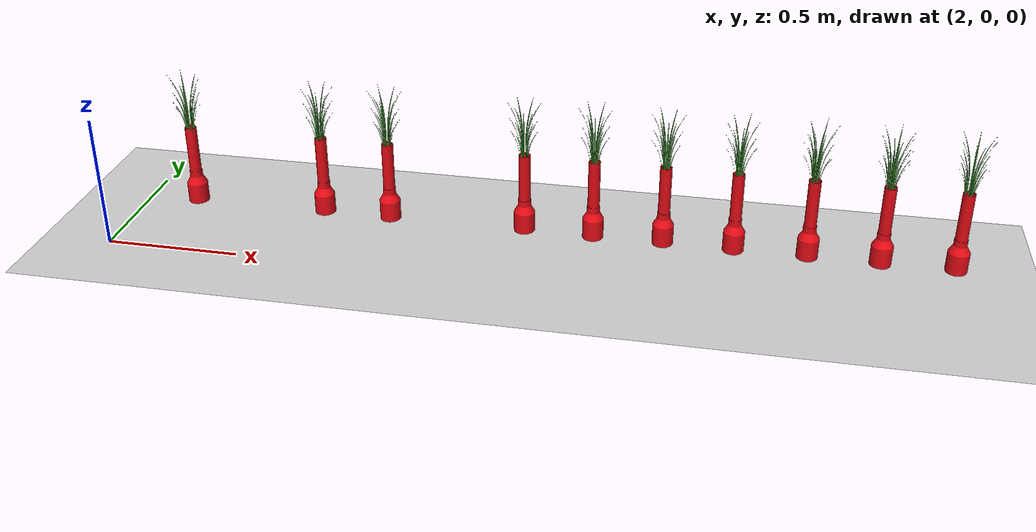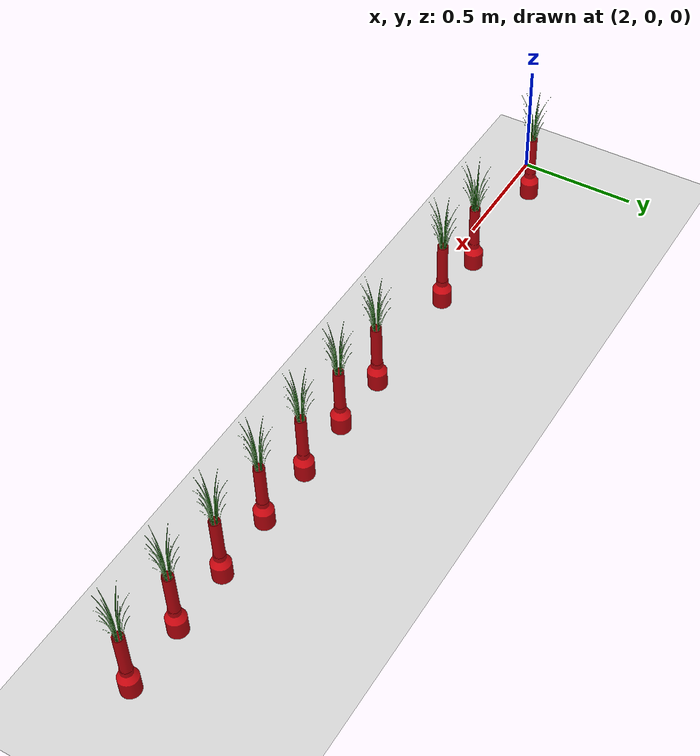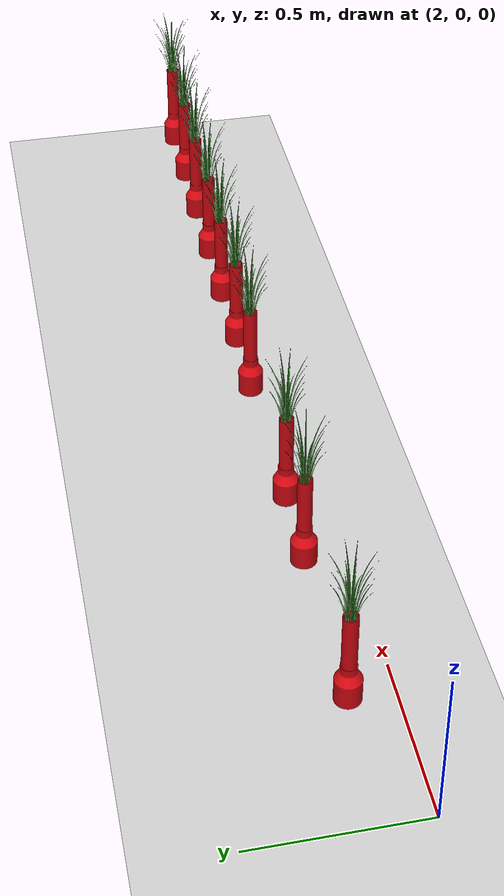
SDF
<sdf version="1.7">
 <world name="default">
  <model name="ground_plane">
   <static>1</static>
   <link name="link">
    <collision name="collision">
     <geometry><plane><normal>0 0 1</normal><size>100 100</size></plane></geometry>
     <surface>
      <contact><collide_bitmask>65535</collide_bitmask></contact>
      <friction><ode><mu>100</mu><mu2>50</mu2></ode></friction>
     </surface>
    </collision>
    <visual name="visual">
     <cast_shadows>0</cast_shadows>
     <geometry><plane><normal>0 0 1</normal><size>100 100</size></plane></geometry>
     <material>
      <script><uri>file://media/materials/scripts/gazebo.material</uri><name>Gazebo/Grey</name></script>
     </material>
    </visual>
   </link>
  </model>
  <model name="seed_red">
   <link name="link_1">
    <inertial>
     <mass>1</mass>
     <inertia>
      <ixx>0.166667</ixx>
      <ixy>0</ixy>
      <ixz>0</ixz>
      <iyy>0.166667</iyy>
      <iyz>0</iyz>
      <izz>0.166667</izz>
     </inertia>
    </inertial>
    <visual name="visual">
     <geometry>
      <mesh><uri>/home/entity014/abu2024_ws/src/abu_description/worlds/seed_red.dae</uri><scale>1 1 1</scale></mesh>
     </geometry>
    </visual>
    <collision name="collision">
     <geometry>
      <mesh><uri>/home/entity014/abu2024_ws/src/abu_description/worlds/seed_red.dae</uri><scale>1 1 1</scale></mesh>
     </geometry>
     <surface>
      <friction>
       <ode><mu>1</mu><mu2>1</mu2><fdir1>0 0 0</fdir1><slip1>0</slip1><slip2>0</slip2></ode>
       <torsional>
        <coefficient>1</coefficient>
        <patch_radius>0</patch_radius>
        <surface_radius>0</surface_radius>
        <use_patch_radius>1</use_patch_radius>
        <ode><slip>0</slip></ode>
       </torsional>
      </friction>
      <bounce><restitution_coefficient>0</restitution_coefficient><threshold>1e+06</threshold></bounce>
      <contact>
       <collide_without_contact>0</collide_without_contact>
       <collide_without_contact_bitmask>1</collide_without_contact_bitmask>
       <collide_bitmask>1</collide_bitmask>
       <ode>
        <soft_cfm>0</soft_cfm>
        <soft_erp>0.2</soft_erp>
        <kp>1e+13</kp>
        <kd>1</kd>
        <max_vel>0.01</max_vel>
        <min_depth>0</min_depth>
       </ode>
       <bullet>
        <split_impulse>1</split_impulse>
        <split_impulse_penetration_threshold>-0.01</split_impulse_penetration_threshold>
        <soft_cfm>0</soft_cfm>
        <soft_erp>0.2</soft_erp>
        <kp>1e+13</kp>
        <kd>1</kd>
       </bullet>
      </contact>
     </surface>
    </collision>
   </link>
   <static>0</static>
   <pose>2.30597 0.160395 0.24437 1e-05 -6e-06 -0.006182</pose>
  </model>
  <model name="seed_red_1">
   <link name="link_1">
    <inertial>
     <mass>1</mass>
     <inertia>
      <ixx>0.166667</ixx>
      <ixy>0</ixy>
      <ixz>0</ixz>
      <iyy>0.166667</iyy>
      <iyz>0</iyz>
      <izz>0.166667</izz>
     </inertia>
    </inertial>
    <visual name="visual">
     <geometry>
      <mesh><uri>/home/entity014/abu2024_ws/src/abu_description/worlds/seed_red.dae</uri><scale>1 1 1</scale></mesh>
     </geometry>
    </visual>
    <collision name="collision">
     <geometry>
      <mesh><uri>/home/entity014/abu2024_ws/src/abu_description/worlds/seed_red.dae</uri><scale>1 1 1</scale></mesh>
     </geometry>
     <surface>
      <friction>
       <ode><mu>1</mu><mu2>1</mu2><fdir1>0 0 0</fdir1><slip1>0</slip1><slip2>0</slip2></ode>
       <torsional>
        <coefficient>1</coefficient>
        <patch_radius>0</patch_radius>
        <surface_radius>0</surface_radius>
        <use_patch_radius>1</use_patch_radius>
        <ode><slip>0</slip></ode>
       </torsional>
      </friction>
      <bounce><restitution_coefficient>0</restitution_coefficient><threshold>1e+06</threshold></bounce>
      <contact>
       <collide_without_contact>0</collide_without_contact>
       <collide_without_contact_bitmask>1</collide_without_contact_bitmask>
       <collide_bitmask>1</collide_bitmask>
       <ode>
        <soft_cfm>0</soft_cfm>
        <soft_erp>0.2</soft_erp>
        <kp>1e+13</kp>
        <kd>1</kd>
        <max_vel>0.01</max_vel>
        <min_depth>0</min_depth>
       </ode>
       <bullet>
        <split_impulse>1</split_impulse>
        <split_impulse_penetration_threshold>-0.01</split_impulse_penetration_threshold>
        <soft_cfm>0</soft_cfm>
        <soft_erp>0.2</soft_erp>
        <kp>1e+13</kp>
        <kd>1</kd>
       </bullet>
      </contact>
     </surface>
    </collision>
   </link>
   <static>0</static>
   <pose>2.80489 0.16348 0.244359 4e-06 1e-06 0.181889</pose>
  </model>
  <model name="seed_red_2">
   <link name="link_1">
    <inertial>
     <mass>1</mass>
     <inertia>
      <ixx>0.166667</ixx>
      <ixy>0</ixy>
      <ixz>0</ixz>
      <iyy>0.166667</iyy>
      <iyz>0</iyz>
      <izz>0.166667</izz>
     </inertia>
    </inertial>
    <visual name="visual">
     <geometry>
      <mesh><uri>/home/entity014/abu2024_ws/src/abu_description/worlds/seed_red.dae</uri><scale>1 1 1</scale></mesh>
     </geometry>
    </visual>
    <collision name="collision">
     <geometry>
      <mesh><uri>/home/entity014/abu2024_ws/src/abu_description/worlds/seed_red.dae</uri><scale>1 1 1</scale></mesh>
     </geometry>
     <surface>
      <friction>
       <ode><mu>1</mu><mu2>1</mu2><fdir1>0 0 0</fdir1><slip1>0</slip1><slip2>0</slip2></ode>
       <torsional>
        <coefficient>1</coefficient>
        <patch_radius>0</patch_radius>
        <surface_radius>0</surface_radius>
        <use_patch_radius>1</use_patch_radius>
        <ode><slip>0</slip></ode>
       </torsional>
      </friction>
      <bounce><restitution_coefficient>0</restitution_coefficient><threshold>1e+06</threshold></bounce>
      <contact>
       <collide_without_contact>0</collide_without_contact>
       <collide_without_contact_bitmask>1</collide_without_contact_bitmask>
       <collide_bitmask>1</collide_bitmask>
       <ode>
        <soft_cfm>0</soft_cfm>
        <soft_erp>0.2</soft_erp>
        <kp>1e+13</kp>
        <kd>1</kd>
        <max_vel>0.01</max_vel>
        <min_depth>0</min_depth>
       </ode>
       <bullet>
        <split_impulse>1</split_impulse>
        <split_impulse_penetration_threshold>-0.01</split_impulse_penetration_threshold>
        <soft_cfm>0</soft_cfm>
        <soft_erp>0.2</soft_erp>
        <kp>1e+13</kp>
        <kd>1</kd>
       </bullet>
      </contact>
     </surface>
    </collision>
   </link>
   <static>0</static>
   <pose>3.05658 0.160248 0.244369 -0 -2e-06 0.02649</pose>
  </model>
  <model name="seed_red_4">
   <link name="link_1">
    <inertial>
     <mass>1</mass>
     <inertia>
      <ixx>0.166667</ixx>
      <ixy>0</ixy>
      <ixz>0</ixz>
      <iyy>0.166667</iyy>
      <iyz>0</iyz>
      <izz>0.166667</izz>
     </inertia>
    </inertial>
    <visual name="visual">
     <geometry>
      <mesh><uri>/home/entity014/abu2024_ws/src/abu_description/worlds/seed_red.dae</uri><scale>1 1 1</scale></mesh>
     </geometry>
    </visual>
    <collision name="collision">
     <geometry>
      <mesh><uri>/home/entity014/abu2024_ws/src/abu_description/worlds/seed_red.dae</uri><scale>1 1 1</scale></mesh>
     </geometry>
     <surface>
      <friction>
       <ode><mu>1</mu><mu2>1</mu2><fdir1>0 0 0</fdir1><slip1>0</slip1><slip2>0</slip2></ode>
       <torsional>
        <coefficient>1</coefficient>
        <patch_radius>0</patch_radius>
        <surface_radius>0</surface_radius>
        <use_patch_radius>1</use_patch_radius>
        <ode><slip>0</slip></ode>
       </torsional>
      </friction>
      <bounce><restitution_coefficient>0</restitution_coefficient><threshold>1e+06</threshold></bounce>
      <contact>
       <collide_without_contact>0</collide_without_contact>
       <collide_without_contact_bitmask>1</collide_without_contact_bitmask>
       <collide_bitmask>1</collide_bitmask>
       <ode>
        <soft_cfm>0</soft_cfm>
        <soft_erp>0.2</soft_erp>
        <kp>1e+13</kp>
        <kd>1</kd>
        <max_vel>0.01</max_vel>
        <min_depth>0</min_depth>
       </ode>
       <bullet>
        <split_impulse>1</split_impulse>
        <split_impulse_penetration_threshold>-0.01</split_impulse_penetration_threshold>
        <soft_cfm>0</soft_cfm>
        <soft_erp>0.2</soft_erp>
        <kp>1e+13</kp>
        <kd>1</kd>
       </bullet>
      </contact>
     </surface>
    </collision>
   </link>
   <static>0</static>
   <pose>3.55706 0.165017 0.24437 3e-06 1.8e-05 0.007047</pose>
  </model>
  <model name="seed_red_5">
   <link name="link_1">
    <inertial>
     <mass>1</mass>
     <inertia>
      <ixx>0.166667</ixx>
      <ixy>0</ixy>
      <ixz>0</ixz>
      <iyy>0.166667</iyy>
      <iyz>0</iyz>
      <izz>0.166667</izz>
     </inertia>
    </inertial>
    <visual name="visual">
     <geometry>
      <mesh><uri>/home/entity014/abu2024_ws/src/abu_description/worlds/seed_red.dae</uri><scale>1 1 1</scale></mesh>
     </geometry>
    </visual>
    <collision name="collision">
     <geometry>
      <mesh><uri>/home/entity014/abu2024_ws/src/abu_description/worlds/seed_red.dae</uri><scale>1 1 1</scale></mesh>
     </geometry>
     <surface>
      <friction>
       <ode><mu>1</mu><mu2>1</mu2><fdir1>0 0 0</fdir1><slip1>0</slip1><slip2>0</slip2></ode>
       <torsional>
        <coefficient>1</coefficient>
        <patch_radius>0</patch_radius>
        <surface_radius>0</surface_radius>
        <use_patch_radius>1</use_patch_radius>
        <ode><slip>0</slip></ode>
       </torsional>
      </friction>
      <bounce><restitution_coefficient>0</restitution_coefficient><threshold>1e+06</threshold></bounce>
      <contact>
       <collide_without_contact>0</collide_without_contact>
       <collide_without_contact_bitmask>1</collide_without_contact_bitmask>
       <collide_bitmask>1</collide_bitmask>
       <ode>
        <soft_cfm>0</soft_cfm>
        <soft_erp>0.2</soft_erp>
        <kp>1e+13</kp>
        <kd>1</kd>
        <max_vel>0.01</max_vel>
        <min_depth>0</min_depth>
       </ode>
       <bullet>
        <split_impulse>1</split_impulse>
        <split_impulse_penetration_threshold>-0.01</split_impulse_penetration_threshold>
        <soft_cfm>0</soft_cfm>
        <soft_erp>0.2</soft_erp>
        <kp>1e+13</kp>
        <kd>1</kd>
       </bullet>
      </contact>
     </surface>
    </collision>
   </link>
   <static>0</static>
   <pose>3.80696 0.160767 0.244369 6e-06 -5e-06 -0.002717</pose>
  </model>
  <model name="seed_red_6">
   <link name="link_1">
    <inertial>
     <mass>1</mass>
     <inertia>
      <ixx>0.166667</ixx>
      <ixy>0</ixy>
      <ixz>0</ixz>
      <iyy>0.166667</iyy>
      <iyz>0</iyz>
      <izz>0.166667</izz>
     </inertia>
    </inertial>
    <visual name="visual">
     <geometry>
      <mesh><uri>/home/entity014/abu2024_ws/src/abu_description/worlds/seed_red.dae</uri><scale>1 1 1</scale></mesh>
     </geometry>
    </visual>
    <collision name="collision">
     <geometry>
      <mesh><uri>/home/entity014/abu2024_ws/src/abu_description/worlds/seed_red.dae</uri><scale>1 1 1</scale></mesh>
     </geometry>
     <surface>
      <friction>
       <ode><mu>1</mu><mu2>1</mu2><fdir1>0 0 0</fdir1><slip1>0</slip1><slip2>0</slip2></ode>
       <torsional>
        <coefficient>1</coefficient>
        <patch_radius>0</patch_radius>
        <surface_radius>0</surface_radius>
        <use_patch_radius>1</use_patch_radius>
        <ode><slip>0</slip></ode>
       </torsional>
      </friction>
      <bounce><restitution_coefficient>0</restitution_coefficient><threshold>1e+06</threshold></bounce>
      <contact>
       <collide_without_contact>0</collide_without_contact>
       <collide_without_contact_bitmask>1</collide_without_contact_bitmask>
       <collide_bitmask>1</collide_bitmask>
       <ode>
        <soft_cfm>0</soft_cfm>
        <soft_erp>0.2</soft_erp>
        <kp>1e+13</kp>
        <kd>1</kd>
        <max_vel>0.01</max_vel>
        <min_depth>0</min_depth>
       </ode>
       <bullet>
        <split_impulse>1</split_impulse>
        <split_impulse_penetration_threshold>-0.01</split_impulse_penetration_threshold>
        <soft_cfm>0</soft_cfm>
        <soft_erp>0.2</soft_erp>
        <kp>1e+13</kp>
        <kd>1</kd>
       </bullet>
      </contact>
     </surface>
    </collision>
   </link>
   <static>0</static>
   <pose>4.0561 0.163956 0.244369 5e-06 -7e-06 -0.03263</pose>
  </model>
  <model name="seed_red_7">
   <link name="link_1">
    <inertial>
     <mass>1</mass>
     <inertia>
      <ixx>0.166667</ixx>
      <ixy>0</ixy>
      <ixz>0</ixz>
      <iyy>0.166667</iyy>
      <iyz>0</iyz>
      <izz>0.166667</izz>
     </inertia>
    </inertial>
    <visual name="visual">
     <geometry>
      <mesh><uri>/home/entity014/abu2024_ws/src/abu_description/worlds/seed_red.dae</uri><scale>1 1 1</scale></mesh>
     </geometry>
    </visual>
    <collision name="collision">
     <geometry>
      <mesh><uri>/home/entity014/abu2024_ws/src/abu_description/worlds/seed_red.dae</uri><scale>1 1 1</scale></mesh>
     </geometry>
     <surface>
      <friction>
       <ode><mu>1</mu><mu2>1</mu2><fdir1>0 0 0</fdir1><slip1>0</slip1><slip2>0</slip2></ode>
       <torsional>
        <coefficient>1</coefficient>
        <patch_radius>0</patch_radius>
        <surface_radius>0</surface_radius>
        <use_patch_radius>1</use_patch_radius>
        <ode><slip>0</slip></ode>
       </torsional>
      </friction>
      <bounce><restitution_coefficient>0</restitution_coefficient><threshold>1e+06</threshold></bounce>
      <contact>
       <collide_without_contact>0</collide_without_contact>
       <collide_without_contact_bitmask>1</collide_without_contact_bitmask>
       <collide_bitmask>1</collide_bitmask>
       <ode>
        <soft_cfm>0</soft_cfm>
        <soft_erp>0.2</soft_erp>
        <kp>1e+13</kp>
        <kd>1</kd>
        <max_vel>0.01</max_vel>
        <min_depth>0</min_depth>
       </ode>
       <bullet>
        <split_impulse>1</split_impulse>
        <split_impulse_penetration_threshold>-0.01</split_impulse_penetration_threshold>
        <soft_cfm>0</soft_cfm>
        <soft_erp>0.2</soft_erp>
        <kp>1e+13</kp>
        <kd>1</kd>
       </bullet>
      </contact>
     </surface>
    </collision>
   </link>
   <static>0</static>
   <pose>4.30494 0.160936 0.244369 1e-06 0 -0.020611</pose>
  </model>
  <model name="seed_red_8">
   <link name="link_1">
    <inertial>
     <mass>1</mass>
     <inertia>
      <ixx>0.166667</ixx>
      <ixy>0</ixy>
      <ixz>0</ixz>
      <iyy>0.166667</iyy>
      <iyz>0</iyz>
      <izz>0.166667</izz>
     </inertia>
    </inertial>
    <visual name="visual">
     <geometry>
      <mesh><uri>/home/entity014/abu2024_ws/src/abu_description/worlds/seed_red.dae</uri><scale>1 1 1</scale></mesh>
     </geometry>
    </visual>
    <collision name="collision">
     <geometry>
      <mesh><uri>/home/entity014/abu2024_ws/src/abu_description/worlds/seed_red.dae</uri><scale>1 1 1</scale></mesh>
     </geometry>
     <surface>
      <friction>
       <ode><mu>1</mu><mu2>1</mu2><fdir1>0 0 0</fdir1><slip1>0</slip1><slip2>0</slip2></ode>
       <torsional>
        <coefficient>1</coefficient>
        <patch_radius>0</patch_radius>
        <surface_radius>0</surface_radius>
        <use_patch_radius>1</use_patch_radius>
        <ode><slip>0</slip></ode>
       </torsional>
      </friction>
      <bounce><restitution_coefficient>0</restitution_coefficient><threshold>1e+06</threshold></bounce>
      <contact>
       <collide_without_contact>0</collide_without_contact>
       <collide_without_contact_bitmask>1</collide_without_contact_bitmask>
       <collide_bitmask>1</collide_bitmask>
       <ode>
        <soft_cfm>0</soft_cfm>
        <soft_erp>0.2</soft_erp>
        <kp>1e+13</kp>
        <kd>1</kd>
        <max_vel>0.01</max_vel>
        <min_depth>0</min_depth>
       </ode>
       <bullet>
        <split_impulse>1</split_impulse>
        <split_impulse_penetration_threshold>-0.01</split_impulse_penetration_threshold>
        <soft_cfm>0</soft_cfm>
        <soft_erp>0.2</soft_erp>
        <kp>1e+13</kp>
        <kd>1</kd>
       </bullet>
      </contact>
     </surface>
    </collision>
   </link>
   <static>0</static>
   <pose>4.5602 0.162003 0.24437 -9e-06 -7e-06 0.000209</pose>
  </model>
  <model name="seed_red_9">
   <link name="link_1">
    <inertial>
     <mass>1</mass>
     <inertia>
      <ixx>0.166667</ixx>
      <ixy>0</ixy>
      <ixz>0</ixz>
      <iyy>0.166667</iyy>
      <iyz>0</iyz>
      <izz>0.166667</izz>
     </inertia>
    </inertial>
    <visual name="visual">
     <geometry>
      <mesh><uri>/home/entity014/abu2024_ws/src/abu_description/worlds/seed_red.dae</uri><scale>1 1 1</scale></mesh>
     </geometry>
    </visual>
    <collision name="collision">
     <geometry>
      <mesh><uri>/home/entity014/abu2024_ws/src/abu_description/worlds/seed_red.dae</uri><scale>1 1 1</scale></mesh>
     </geometry>
     <surface>
      <friction>
       <ode><mu>1</mu><mu2>1</mu2><fdir1>0 0 0</fdir1><slip1>0</slip1><slip2>0</slip2></ode>
       <torsional>
        <coefficient>1</coefficient>
        <patch_radius>0</patch_radius>
        <surface_radius>0</surface_radius>
        <use_patch_radius>1</use_patch_radius>
        <ode><slip>0</slip></ode>
       </torsional>
      </friction>
      <bounce><restitution_coefficient>0</restitution_coefficient><threshold>1e+06</threshold></bounce>
      <contact>
       <collide_without_contact>0</collide_without_contact>
       <collide_without_contact_bitmask>1</collide_without_contact_bitmask>
       <collide_bitmask>1</collide_bitmask>
       <ode>
        <soft_cfm>0</soft_cfm>
        <soft_erp>0.2</soft_erp>
        <kp>1e+13</kp>
        <kd>1</kd>
        <max_vel>0.01</max_vel>
        <min_depth>0</min_depth>
       </ode>
       <bullet>
        <split_impulse>1</split_impulse>
        <split_impulse_penetration_threshold>-0.01</split_impulse_penetration_threshold>
        <soft_cfm>0</soft_cfm>
        <soft_erp>0.2</soft_erp>
        <kp>1e+13</kp>
        <kd>1</kd>
       </bullet>
      </contact>
     </surface>
    </collision>
   </link>
   <static>0</static>
   <pose>4.80888 0.160134 0.244369 6e-06 -8e-06 0.116256</pose>
  </model>
  <model name="seed_red_10">
   <link name="link_1">
    <inertial>
     <mass>1</mass>
     <inertia>
      <ixx>0.166667</ixx>
      <ixy>0</ixy>
      <ixz>0</ixz>
      <iyy>0.166667</iyy>
      <iyz>0</iyz>
      <izz>0.166667</izz>
     </inertia>
    </inertial>
    <visual name="visual">
     <geometry>
      <mesh><uri>/home/entity014/abu2024_ws/src/abu_description/worlds/seed_red.dae</uri><scale>1 1 1</scale></mesh>
     </geometry>
    </visual>
    <collision name="collision">
     <geometry>
      <mesh><uri>/home/entity014/abu2024_ws/src/abu_description/worlds/seed_red.dae</uri><scale>1 1 1</scale></mesh>
     </geometry>
     <surface>
      <friction>
       <ode><mu>1</mu><mu2>1</mu2><fdir1>0 0 0</fdir1><slip1>0</slip1><slip2>0</slip2></ode>
       <torsional>
        <coefficient>1</coefficient>
        <patch_radius>0</patch_radius>
        <surface_radius>0</surface_radius>
        <use_patch_radius>1</use_patch_radius>
        <ode><slip>0</slip></ode>
       </torsional>
      </friction>
      <bounce><restitution_coefficient>0</restitution_coefficient><threshold>1e+06</threshold></bounce>
      <contact>
       <collide_without_contact>0</collide_without_contact>
       <collide_without_contact_bitmask>1</collide_without_contact_bitmask>
       <collide_bitmask>1</collide_bitmask>
       <ode>
        <soft_cfm>0</soft_cfm>
        <soft_erp>0.2</soft_erp>
        <kp>1e+13</kp>
        <kd>1</kd>
        <max_vel>0.01</max_vel>
        <min_depth>0</min_depth>
       </ode>
       <bullet>
        <split_impulse>1</split_impulse>
        <split_impulse_penetration_threshold>-0.01</split_impulse_penetration_threshold>
        <soft_cfm>0</soft_cfm>
        <soft_erp>0.2</soft_erp>
        <kp>1e+13</kp>
        <kd>1</kd>
       </bullet>
      </contact>
     </surface>
    </collision>
   </link>
   <static>0</static>
   <pose>5.06177 0.161648 0.244369 -2e-06 -1e-06 0.173481</pose>
  </model>
 </world>
</sdf>
